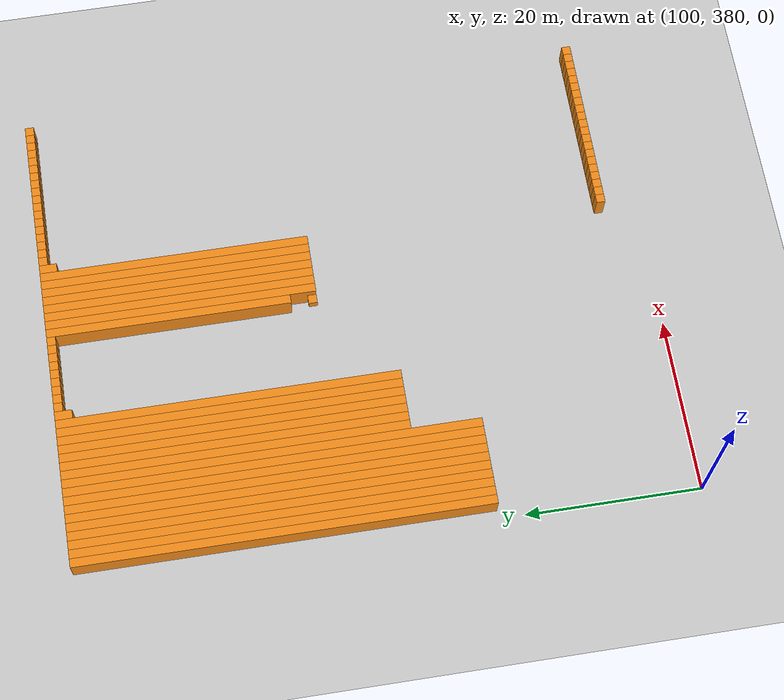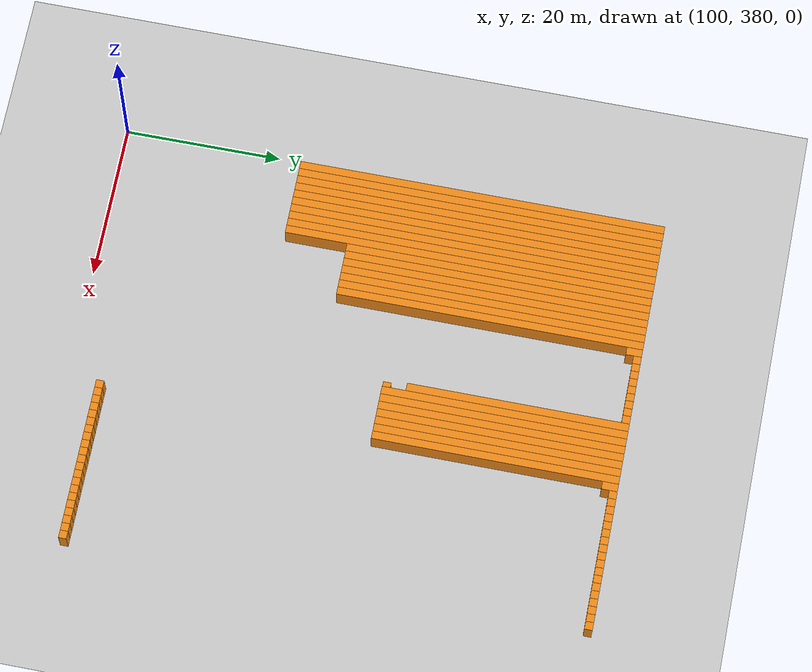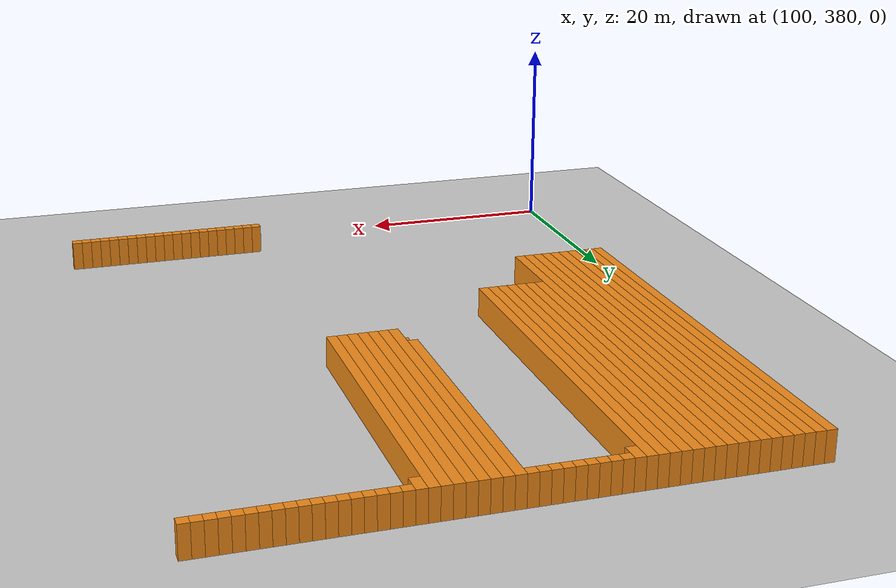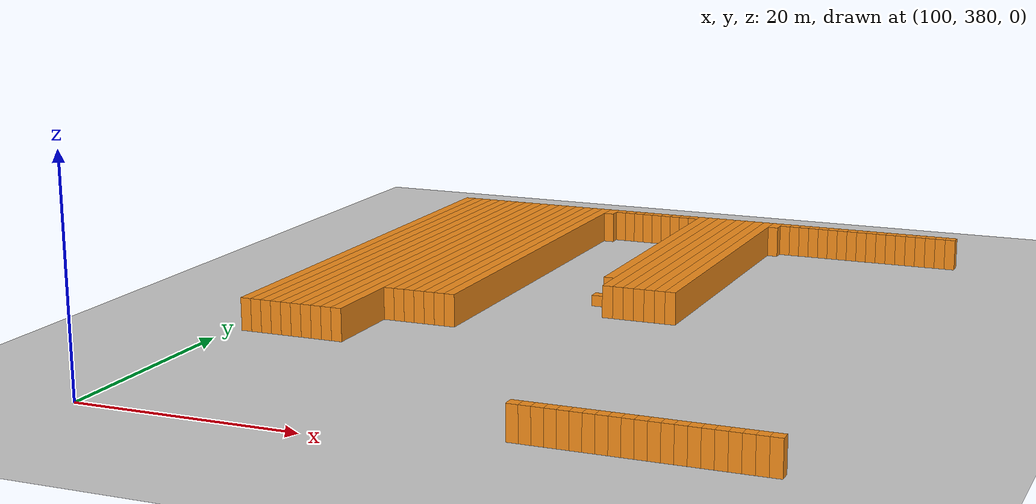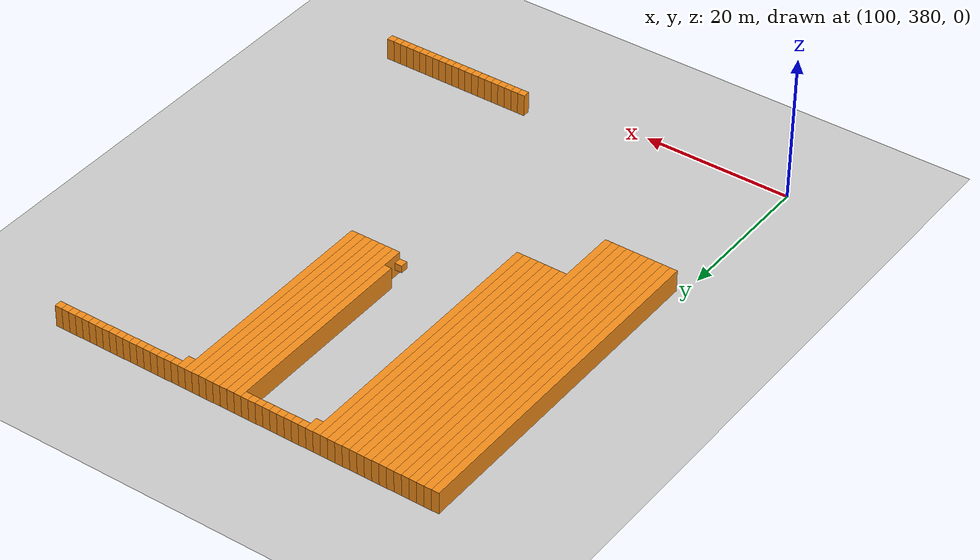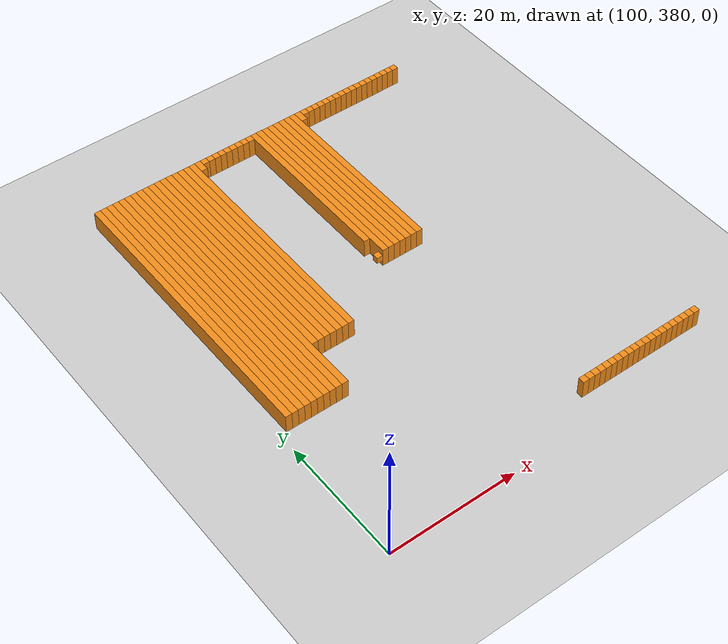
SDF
<sdf version="1.6">
 <world name="default">
  <include><uri>model://ground_plane</uri></include>
  <model name="unit_box_1143">
   <pose>101.50   426.50     1.50 0 0 0</pose>
   <static>1</static>
   <link name="link">
    <inertial>
     <mass>5000</mass>
     <inertia><ixx>200</ixx><ixy>0</ixy><ixz>0</ixz><iyy>200</iyy><iyz>0</iyz><izz>200</izz></inertia>
    </inertial>
    <collision name="collision"><geometry><box><size>1 47 3</size></box></geometry></collision>
    <visual name="visual">
     <geometry><box><size>1 47 3</size></box></geometry>
     <material>
      <script><name>Gazebo/Orange</name><uri>file://media/materials/scripts/gazebo.material</uri></script>
     </material>
    </visual>
   </link>
  </model>
  <model name="unit_box_1153">
   <pose>102.50   426.50     1.50 0 0 0</pose>
   <static>1</static>
   <link name="link">
    <inertial>
     <mass>5000</mass>
     <inertia><ixx>200</ixx><ixy>0</ixy><ixz>0</ixz><iyy>200</iyy><iyz>0</iyz><izz>200</izz></inertia>
    </inertial>
    <collision name="collision"><geometry><box><size>1 47 3</size></box></geometry></collision>
    <visual name="visual">
     <geometry><box><size>1 47 3</size></box></geometry>
     <material>
      <script><name>Gazebo/Orange</name><uri>file://media/materials/scripts/gazebo.material</uri></script>
     </material>
    </visual>
   </link>
  </model>
  <model name="unit_box_1163">
   <pose>103.50   426.50     1.50 0 0 0</pose>
   <static>1</static>
   <link name="link">
    <inertial>
     <mass>5000</mass>
     <inertia><ixx>200</ixx><ixy>0</ixy><ixz>0</ixz><iyy>200</iyy><iyz>0</iyz><izz>200</izz></inertia>
    </inertial>
    <collision name="collision"><geometry><box><size>1 47 3</size></box></geometry></collision>
    <visual name="visual">
     <geometry><box><size>1 47 3</size></box></geometry>
     <material>
      <script><name>Gazebo/Orange</name><uri>file://media/materials/scripts/gazebo.material</uri></script>
     </material>
    </visual>
   </link>
  </model>
  <model name="unit_box_1173">
   <pose>104.50   426.50     1.50 0 0 0</pose>
   <static>1</static>
   <link name="link">
    <inertial>
     <mass>5000</mass>
     <inertia><ixx>200</ixx><ixy>0</ixy><ixz>0</ixz><iyy>200</iyy><iyz>0</iyz><izz>200</izz></inertia>
    </inertial>
    <collision name="collision"><geometry><box><size>1 47 3</size></box></geometry></collision>
    <visual name="visual">
     <geometry><box><size>1 47 3</size></box></geometry>
     <material>
      <script><name>Gazebo/Orange</name><uri>file://media/materials/scripts/gazebo.material</uri></script>
     </material>
    </visual>
   </link>
  </model>
  <model name="unit_box_1183">
   <pose>105.50   426.50     1.50 0 0 0</pose>
   <static>1</static>
   <link name="link">
    <inertial>
     <mass>5000</mass>
     <inertia><ixx>200</ixx><ixy>0</ixy><ixz>0</ixz><iyy>200</iyy><iyz>0</iyz><izz>200</izz></inertia>
    </inertial>
    <collision name="collision"><geometry><box><size>1 47 3</size></box></geometry></collision>
    <visual name="visual">
     <geometry><box><size>1 47 3</size></box></geometry>
     <material>
      <script><name>Gazebo/Orange</name><uri>file://media/materials/scripts/gazebo.material</uri></script>
     </material>
    </visual>
   </link>
  </model>
  <model name="unit_box_1192">
   <pose>106.50   426.50     1.50 0 0 0</pose>
   <static>1</static>
   <link name="link">
    <inertial>
     <mass>5000</mass>
     <inertia><ixx>200</ixx><ixy>0</ixy><ixz>0</ixz><iyy>200</iyy><iyz>0</iyz><izz>200</izz></inertia>
    </inertial>
    <collision name="collision"><geometry><box><size>1 47 3</size></box></geometry></collision>
    <visual name="visual">
     <geometry><box><size>1 47 3</size></box></geometry>
     <material>
      <script><name>Gazebo/Orange</name><uri>file://media/materials/scripts/gazebo.material</uri></script>
     </material>
    </visual>
   </link>
  </model>
  <model name="unit_box_1201">
   <pose>107.50   426.50     1.50 0 0 0</pose>
   <static>1</static>
   <link name="link">
    <inertial>
     <mass>5000</mass>
     <inertia><ixx>200</ixx><ixy>0</ixy><ixz>0</ixz><iyy>200</iyy><iyz>0</iyz><izz>200</izz></inertia>
    </inertial>
    <collision name="collision"><geometry><box><size>1 47 3</size></box></geometry></collision>
    <visual name="visual">
     <geometry><box><size>1 47 3</size></box></geometry>
     <material>
      <script><name>Gazebo/Orange</name><uri>file://media/materials/scripts/gazebo.material</uri></script>
     </material>
    </visual>
   </link>
  </model>
  <model name="unit_box_1210">
   <pose>108.50   426.50     1.50 0 0 0</pose>
   <static>1</static>
   <link name="link">
    <inertial>
     <mass>5000</mass>
     <inertia><ixx>200</ixx><ixy>0</ixy><ixz>0</ixz><iyy>200</iyy><iyz>0</iyz><izz>200</izz></inertia>
    </inertial>
    <collision name="collision"><geometry><box><size>1 47 3</size></box></geometry></collision>
    <visual name="visual">
     <geometry><box><size>1 47 3</size></box></geometry>
     <material>
      <script><name>Gazebo/Orange</name><uri>file://media/materials/scripts/gazebo.material</uri></script>
     </material>
    </visual>
   </link>
  </model>
  <model name="unit_box_1219">
   <pose>109.50   426.50     1.50 0 0 0</pose>
   <static>1</static>
   <link name="link">
    <inertial>
     <mass>5000</mass>
     <inertia><ixx>200</ixx><ixy>0</ixy><ixz>0</ixz><iyy>200</iyy><iyz>0</iyz><izz>200</izz></inertia>
    </inertial>
    <collision name="collision"><geometry><box><size>1 47 3</size></box></geometry></collision>
    <visual name="visual">
     <geometry><box><size>1 47 3</size></box></geometry>
     <material>
      <script><name>Gazebo/Orange</name><uri>file://media/materials/scripts/gazebo.material</uri></script>
     </material>
    </visual>
   </link>
  </model>
  <model name="unit_box_1228">
   <pose>110.50   426.50     1.50 0 0 0</pose>
   <static>1</static>
   <link name="link">
    <inertial>
     <mass>5000</mass>
     <inertia><ixx>200</ixx><ixy>0</ixy><ixz>0</ixz><iyy>200</iyy><iyz>0</iyz><izz>200</izz></inertia>
    </inertial>
    <collision name="collision"><geometry><box><size>1 47 3</size></box></geometry></collision>
    <visual name="visual">
     <geometry><box><size>1 47 3</size></box></geometry>
     <material>
      <script><name>Gazebo/Orange</name><uri>file://media/materials/scripts/gazebo.material</uri></script>
     </material>
    </visual>
   </link>
  </model>
  <model name="unit_box_1238">
   <pose>111.50   430.50     1.50 0 0 0</pose>
   <static>1</static>
   <link name="link">
    <inertial>
     <mass>5000</mass>
     <inertia><ixx>200</ixx><ixy>0</ixy><ixz>0</ixz><iyy>200</iyy><iyz>0</iyz><izz>200</izz></inertia>
    </inertial>
    <collision name="collision"><geometry><box><size>1 39 3</size></box></geometry></collision>
    <visual name="visual">
     <geometry><box><size>1 39 3</size></box></geometry>
     <material>
      <script><name>Gazebo/Orange</name><uri>file://media/materials/scripts/gazebo.material</uri></script>
     </material>
    </visual>
   </link>
  </model>
  <model name="unit_box_1248">
   <pose>112.50   430.50     1.50 0 0 0</pose>
   <static>1</static>
   <link name="link">
    <inertial>
     <mass>5000</mass>
     <inertia><ixx>200</ixx><ixy>0</ixy><ixz>0</ixz><iyy>200</iyy><iyz>0</iyz><izz>200</izz></inertia>
    </inertial>
    <collision name="collision"><geometry><box><size>1 39 3</size></box></geometry></collision>
    <visual name="visual">
     <geometry><box><size>1 39 3</size></box></geometry>
     <material>
      <script><name>Gazebo/Orange</name><uri>file://media/materials/scripts/gazebo.material</uri></script>
     </material>
    </visual>
   </link>
  </model>
  <model name="unit_box_1258">
   <pose>113.50   430.50     1.50 0 0 0</pose>
   <static>1</static>
   <link name="link">
    <inertial>
     <mass>5000</mass>
     <inertia><ixx>200</ixx><ixy>0</ixy><ixz>0</ixz><iyy>200</iyy><iyz>0</iyz><izz>200</izz></inertia>
    </inertial>
    <collision name="collision"><geometry><box><size>1 39 3</size></box></geometry></collision>
    <visual name="visual">
     <geometry><box><size>1 39 3</size></box></geometry>
     <material>
      <script><name>Gazebo/Orange</name><uri>file://media/materials/scripts/gazebo.material</uri></script>
     </material>
    </visual>
   </link>
  </model>
  <model name="unit_box_1268">
   <pose>114.50   430.50     1.50 0 0 0</pose>
   <static>1</static>
   <link name="link">
    <inertial>
     <mass>5000</mass>
     <inertia><ixx>200</ixx><ixy>0</ixy><ixz>0</ixz><iyy>200</iyy><iyz>0</iyz><izz>200</izz></inertia>
    </inertial>
    <collision name="collision"><geometry><box><size>1 39 3</size></box></geometry></collision>
    <visual name="visual">
     <geometry><box><size>1 39 3</size></box></geometry>
     <material>
      <script><name>Gazebo/Orange</name><uri>file://media/materials/scripts/gazebo.material</uri></script>
     </material>
    </visual>
   </link>
  </model>
  <model name="unit_box_1278">
   <pose>115.50   430.50     1.50 0 0 0</pose>
   <static>1</static>
   <link name="link">
    <inertial>
     <mass>5000</mass>
     <inertia><ixx>200</ixx><ixy>0</ixy><ixz>0</ixz><iyy>200</iyy><iyz>0</iyz><izz>200</izz></inertia>
    </inertial>
    <collision name="collision"><geometry><box><size>1 39 3</size></box></geometry></collision>
    <visual name="visual">
     <geometry><box><size>1 39 3</size></box></geometry>
     <material>
      <script><name>Gazebo/Orange</name><uri>file://media/materials/scripts/gazebo.material</uri></script>
     </material>
    </visual>
   </link>
  </model>
  <model name="unit_box_1292">
   <pose>116.50   430.50     1.50 0 0 0</pose>
   <static>1</static>
   <link name="link">
    <inertial>
     <mass>5000</mass>
     <inertia><ixx>200</ixx><ixy>0</ixy><ixz>0</ixz><iyy>200</iyy><iyz>0</iyz><izz>200</izz></inertia>
    </inertial>
    <collision name="collision"><geometry><box><size>1 39 3</size></box></geometry></collision>
    <visual name="visual">
     <geometry><box><size>1 39 3</size></box></geometry>
     <material>
      <script><name>Gazebo/Orange</name><uri>file://media/materials/scripts/gazebo.material</uri></script>
     </material>
    </visual>
   </link>
  </model>
  <model name="unit_box_1304">
   <pose>117.50   430.50     1.50 0 0 0</pose>
   <static>1</static>
   <link name="link">
    <inertial>
     <mass>5000</mass>
     <inertia><ixx>200</ixx><ixy>0</ixy><ixz>0</ixz><iyy>200</iyy><iyz>0</iyz><izz>200</izz></inertia>
    </inertial>
    <collision name="collision"><geometry><box><size>1 39 3</size></box></geometry></collision>
    <visual name="visual">
     <geometry><box><size>1 39 3</size></box></geometry>
     <material>
      <script><name>Gazebo/Orange</name><uri>file://media/materials/scripts/gazebo.material</uri></script>
     </material>
    </visual>
   </link>
  </model>
  <model name="unit_box_1315">
   <pose>118.50   449.00     1.50 0 0 0</pose>
   <static>1</static>
   <link name="link">
    <inertial>
     <mass>5000</mass>
     <inertia><ixx>200</ixx><ixy>0</ixy><ixz>0</ixz><iyy>200</iyy><iyz>0</iyz><izz>200</izz></inertia>
    </inertial>
    <collision name="collision"><geometry><box><size>1 2 3</size></box></geometry></collision>
    <visual name="visual">
     <geometry><box><size>1 2 3</size></box></geometry>
     <material>
      <script><name>Gazebo/Orange</name><uri>file://media/materials/scripts/gazebo.material</uri></script>
     </material>
    </visual>
   </link>
  </model>
  <model name="unit_box_1329">
   <pose>119.50   449.50     1.50 0 0 0</pose>
   <static>1</static>
   <link name="link">
    <inertial>
     <mass>5000</mass>
     <inertia><ixx>200</ixx><ixy>0</ixy><ixz>0</ixz><iyy>200</iyy><iyz>0</iyz><izz>200</izz></inertia>
    </inertial>
    <collision name="collision"><geometry><box><size>1 1 3</size></box></geometry></collision>
    <visual name="visual">
     <geometry><box><size>1 1 3</size></box></geometry>
     <material>
      <script><name>Gazebo/Orange</name><uri>file://media/materials/scripts/gazebo.material</uri></script>
     </material>
    </visual>
   </link>
  </model>
  <model name="unit_box_1341">
   <pose>120.50   449.50     1.50 0 0 0</pose>
   <static>1</static>
   <link name="link">
    <inertial>
     <mass>5000</mass>
     <inertia><ixx>200</ixx><ixy>0</ixy><ixz>0</ixz><iyy>200</iyy><iyz>0</iyz><izz>200</izz></inertia>
    </inertial>
    <collision name="collision"><geometry><box><size>1 1 3</size></box></geometry></collision>
    <visual name="visual">
     <geometry><box><size>1 1 3</size></box></geometry>
     <material>
      <script><name>Gazebo/Orange</name><uri>file://media/materials/scripts/gazebo.material</uri></script>
     </material>
    </visual>
   </link>
  </model>
  <model name="unit_box_1350">
   <pose>121.50   449.50     1.50 0 0 0</pose>
   <static>1</static>
   <link name="link">
    <inertial>
     <mass>5000</mass>
     <inertia><ixx>200</ixx><ixy>0</ixy><ixz>0</ixz><iyy>200</iyy><iyz>0</iyz><izz>200</izz></inertia>
    </inertial>
    <collision name="collision"><geometry><box><size>1 1 3</size></box></geometry></collision>
    <visual name="visual">
     <geometry><box><size>1 1 3</size></box></geometry>
     <material>
      <script><name>Gazebo/Orange</name><uri>file://media/materials/scripts/gazebo.material</uri></script>
     </material>
    </visual>
   </link>
  </model>
  <model name="unit_box_1357">
   <pose>122.50   449.50     1.50 0 0 0</pose>
   <static>1</static>
   <link name="link">
    <inertial>
     <mass>5000</mass>
     <inertia><ixx>200</ixx><ixy>0</ixy><ixz>0</ixz><iyy>200</iyy><iyz>0</iyz><izz>200</izz></inertia>
    </inertial>
    <collision name="collision"><geometry><box><size>1 1 3</size></box></geometry></collision>
    <visual name="visual">
     <geometry><box><size>1 1 3</size></box></geometry>
     <material>
      <script><name>Gazebo/Orange</name><uri>file://media/materials/scripts/gazebo.material</uri></script>
     </material>
    </visual>
   </link>
  </model>
  <model name="unit_box_1365">
   <pose>123.50   449.50     1.50 0 0 0</pose>
   <static>1</static>
   <link name="link">
    <inertial>
     <mass>5000</mass>
     <inertia><ixx>200</ixx><ixy>0</ixy><ixz>0</ixz><iyy>200</iyy><iyz>0</iyz><izz>200</izz></inertia>
    </inertial>
    <collision name="collision"><geometry><box><size>1 1 3</size></box></geometry></collision>
    <visual name="visual">
     <geometry><box><size>1 1 3</size></box></geometry>
     <material>
      <script><name>Gazebo/Orange</name><uri>file://media/materials/scripts/gazebo.material</uri></script>
     </material>
    </visual>
   </link>
  </model>
  <model name="unit_box_1371">
   <pose>124.50   449.50     1.50 0 0 0</pose>
   <static>1</static>
   <link name="link">
    <inertial>
     <mass>5000</mass>
     <inertia><ixx>200</ixx><ixy>0</ixy><ixz>0</ixz><iyy>200</iyy><iyz>0</iyz><izz>200</izz></inertia>
    </inertial>
    <collision name="collision"><geometry><box><size>1 1 3</size></box></geometry></collision>
    <visual name="visual">
     <geometry><box><size>1 1 3</size></box></geometry>
     <material>
      <script><name>Gazebo/Orange</name><uri>file://media/materials/scripts/gazebo.material</uri></script>
     </material>
    </visual>
   </link>
  </model>
  <model name="unit_box_1377">
   <pose>125.50   449.50     1.50 0 0 0</pose>
   <static>1</static>
   <link name="link">
    <inertial>
     <mass>5000</mass>
     <inertia><ixx>200</ixx><ixy>0</ixy><ixz>0</ixz><iyy>200</iyy><iyz>0</iyz><izz>200</izz></inertia>
    </inertial>
    <collision name="collision"><geometry><box><size>1 1 3</size></box></geometry></collision>
    <visual name="visual">
     <geometry><box><size>1 1 3</size></box></geometry>
     <material>
      <script><name>Gazebo/Orange</name><uri>file://media/materials/scripts/gazebo.material</uri></script>
     </material>
    </visual>
   </link>
  </model>
  <model name="unit_box_1383">
   <pose>126.50   449.50     1.50 0 0 0</pose>
   <static>1</static>
   <link name="link">
    <inertial>
     <mass>5000</mass>
     <inertia><ixx>200</ixx><ixy>0</ixy><ixz>0</ixz><iyy>200</iyy><iyz>0</iyz><izz>200</izz></inertia>
    </inertial>
    <collision name="collision"><geometry><box><size>1 1 3</size></box></geometry></collision>
    <visual name="visual">
     <geometry><box><size>1 1 3</size></box></geometry>
     <material>
      <script><name>Gazebo/Orange</name><uri>file://media/materials/scripts/gazebo.material</uri></script>
     </material>
    </visual>
   </link>
  </model>
  <model name="unit_box_1389">
   <pose>127.50   449.50     1.50 0 0 0</pose>
   <static>1</static>
   <link name="link">
    <inertial>
     <mass>5000</mass>
     <inertia><ixx>200</ixx><ixy>0</ixy><ixz>0</ixz><iyy>200</iyy><iyz>0</iyz><izz>200</izz></inertia>
    </inertial>
    <collision name="collision"><geometry><box><size>1 1 3</size></box></geometry></collision>
    <visual name="visual">
     <geometry><box><size>1 1 3</size></box></geometry>
     <material>
      <script><name>Gazebo/Orange</name><uri>file://media/materials/scripts/gazebo.material</uri></script>
     </material>
    </visual>
   </link>
  </model>
  <model name="unit_box_1395">
   <pose>128.50   419.50     1.50 0 0 0</pose>
   <static>1</static>
   <link name="link">
    <inertial>
     <mass>5000</mass>
     <inertia><ixx>200</ixx><ixy>0</ixy><ixz>0</ixz><iyy>200</iyy><iyz>0</iyz><izz>200</izz></inertia>
    </inertial>
    <collision name="collision"><geometry><box><size>1 1 1</size></box></geometry></collision>
    <visual name="visual">
     <geometry><box><size>1 1 1</size></box></geometry>
     <material>
      <script><name>Gazebo/Orange</name><uri>file://media/materials/scripts/gazebo.material</uri></script>
     </material>
    </visual>
   </link>
  </model>
  <model name="unit_box_1396">
   <pose>128.50   436.00     1.50 0 0 0</pose>
   <static>1</static>
   <link name="link">
    <inertial>
     <mass>5000</mass>
     <inertia><ixx>200</ixx><ixy>0</ixy><ixz>0</ixz><iyy>200</iyy><iyz>0</iyz><izz>200</izz></inertia>
    </inertial>
    <collision name="collision"><geometry><box><size>1 28 3</size></box></geometry></collision>
    <visual name="visual">
     <geometry><box><size>1 28 3</size></box></geometry>
     <material>
      <script><name>Gazebo/Orange</name><uri>file://media/materials/scripts/gazebo.material</uri></script>
     </material>
    </visual>
   </link>
  </model>
  <model name="unit_box_1403">
   <pose>129.50   434.50     1.50 0 0 0</pose>
   <static>1</static>
   <link name="link">
    <inertial>
     <mass>5000</mass>
     <inertia><ixx>200</ixx><ixy>0</ixy><ixz>0</ixz><iyy>200</iyy><iyz>0</iyz><izz>200</izz></inertia>
    </inertial>
    <collision name="collision"><geometry><box><size>1 31 3</size></box></geometry></collision>
    <visual name="visual">
     <geometry><box><size>1 31 3</size></box></geometry>
     <material>
      <script><name>Gazebo/Orange</name><uri>file://media/materials/scripts/gazebo.material</uri></script>
     </material>
    </visual>
   </link>
  </model>
  <model name="unit_box_1411">
   <pose>130.50   434.50     1.50 0 0 0</pose>
   <static>1</static>
   <link name="link">
    <inertial>
     <mass>5000</mass>
     <inertia><ixx>200</ixx><ixy>0</ixy><ixz>0</ixz><iyy>200</iyy><iyz>0</iyz><izz>200</izz></inertia>
    </inertial>
    <collision name="collision"><geometry><box><size>1 31 3</size></box></geometry></collision>
    <visual name="visual">
     <geometry><box><size>1 31 3</size></box></geometry>
     <material>
      <script><name>Gazebo/Orange</name><uri>file://media/materials/scripts/gazebo.material</uri></script>
     </material>
    </visual>
   </link>
  </model>
  <model name="unit_box_1418">
   <pose>131.50   434.50     1.50 0 0 0</pose>
   <static>1</static>
   <link name="link">
    <inertial>
     <mass>5000</mass>
     <inertia><ixx>200</ixx><ixy>0</ixy><ixz>0</ixz><iyy>200</iyy><iyz>0</iyz><izz>200</izz></inertia>
    </inertial>
    <collision name="collision"><geometry><box><size>1 31 3</size></box></geometry></collision>
    <visual name="visual">
     <geometry><box><size>1 31 3</size></box></geometry>
     <material>
      <script><name>Gazebo/Orange</name><uri>file://media/materials/scripts/gazebo.material</uri></script>
     </material>
    </visual>
   </link>
  </model>
  <model name="unit_box_1425">
   <pose>132.50   434.50     1.50 0 0 0</pose>
   <static>1</static>
   <link name="link">
    <inertial>
     <mass>5000</mass>
     <inertia><ixx>200</ixx><ixy>0</ixy><ixz>0</ixz><iyy>200</iyy><iyz>0</iyz><izz>200</izz></inertia>
    </inertial>
    <collision name="collision"><geometry><box><size>1 31 3</size></box></geometry></collision>
    <visual name="visual">
     <geometry><box><size>1 31 3</size></box></geometry>
     <material>
      <script><name>Gazebo/Orange</name><uri>file://media/materials/scripts/gazebo.material</uri></script>
     </material>
    </visual>
   </link>
  </model>
  <model name="unit_box_1432">
   <pose>133.50   434.50     1.50 0 0 0</pose>
   <static>1</static>
   <link name="link">
    <inertial>
     <mass>5000</mass>
     <inertia><ixx>200</ixx><ixy>0</ixy><ixz>0</ixz><iyy>200</iyy><iyz>0</iyz><izz>200</izz></inertia>
    </inertial>
    <collision name="collision"><geometry><box><size>1 31 3</size></box></geometry></collision>
    <visual name="visual">
     <geometry><box><size>1 31 3</size></box></geometry>
     <material>
      <script><name>Gazebo/Orange</name><uri>file://media/materials/scripts/gazebo.material</uri></script>
     </material>
    </visual>
   </link>
  </model>
  <model name="unit_box_1439">
   <pose>134.50   434.50     1.50 0 0 0</pose>
   <static>1</static>
   <link name="link">
    <inertial>
     <mass>5000</mass>
     <inertia><ixx>200</ixx><ixy>0</ixy><ixz>0</ixz><iyy>200</iyy><iyz>0</iyz><izz>200</izz></inertia>
    </inertial>
    <collision name="collision"><geometry><box><size>1 31 3</size></box></geometry></collision>
    <visual name="visual">
     <geometry><box><size>1 31 3</size></box></geometry>
     <material>
      <script><name>Gazebo/Orange</name><uri>file://media/materials/scripts/gazebo.material</uri></script>
     </material>
    </visual>
   </link>
  </model>
  <model name="unit_box_1453">
   <pose>135.50   384.50     1.50 0 0 0</pose>
   <static>1</static>
   <link name="link">
    <inertial>
     <mass>5000</mass>
     <inertia><ixx>200</ixx><ixy>0</ixy><ixz>0</ixz><iyy>200</iyy><iyz>0</iyz><izz>200</izz></inertia>
    </inertial>
    <collision name="collision"><geometry><box><size>1 1 3</size></box></geometry></collision>
    <visual name="visual">
     <geometry><box><size>1 1 3</size></box></geometry>
     <material>
      <script><name>Gazebo/Orange</name><uri>file://media/materials/scripts/gazebo.material</uri></script>
     </material>
    </visual>
   </link>
  </model>
  <model name="unit_box_1454">
   <pose>135.50   434.50     1.50 0 0 0</pose>
   <static>1</static>
   <link name="link">
    <inertial>
     <mass>5000</mass>
     <inertia><ixx>200</ixx><ixy>0</ixy><ixz>0</ixz><iyy>200</iyy><iyz>0</iyz><izz>200</izz></inertia>
    </inertial>
    <collision name="collision"><geometry><box><size>1 31 3</size></box></geometry></collision>
    <visual name="visual">
     <geometry><box><size>1 31 3</size></box></geometry>
     <material>
      <script><name>Gazebo/Orange</name><uri>file://media/materials/scripts/gazebo.material</uri></script>
     </material>
    </visual>
   </link>
  </model>
  <model name="unit_box_1466">
   <pose>136.50   384.50     1.50 0 0 0</pose>
   <static>1</static>
   <link name="link">
    <inertial>
     <mass>5000</mass>
     <inertia><ixx>200</ixx><ixy>0</ixy><ixz>0</ixz><iyy>200</iyy><iyz>0</iyz><izz>200</izz></inertia>
    </inertial>
    <collision name="collision"><geometry><box><size>1 1 3</size></box></geometry></collision>
    <visual name="visual">
     <geometry><box><size>1 1 3</size></box></geometry>
     <material>
      <script><name>Gazebo/Orange</name><uri>file://media/materials/scripts/gazebo.material</uri></script>
     </material>
    </visual>
   </link>
  </model>
  <model name="unit_box_1467">
   <pose>136.50   449.00     1.50 0 0 0</pose>
   <static>1</static>
   <link name="link">
    <inertial>
     <mass>5000</mass>
     <inertia><ixx>200</ixx><ixy>0</ixy><ixz>0</ixz><iyy>200</iyy><iyz>0</iyz><izz>200</izz></inertia>
    </inertial>
    <collision name="collision"><geometry><box><size>1 2 3</size></box></geometry></collision>
    <visual name="visual">
     <geometry><box><size>1 2 3</size></box></geometry>
     <material>
      <script><name>Gazebo/Orange</name><uri>file://media/materials/scripts/gazebo.material</uri></script>
     </material>
    </visual>
   </link>
  </model>
  <model name="unit_box_1480">
   <pose>137.50   384.50     1.50 0 0 0</pose>
   <static>1</static>
   <link name="link">
    <inertial>
     <mass>5000</mass>
     <inertia><ixx>200</ixx><ixy>0</ixy><ixz>0</ixz><iyy>200</iyy><iyz>0</iyz><izz>200</izz></inertia>
    </inertial>
    <collision name="collision"><geometry><box><size>1 1 3</size></box></geometry></collision>
    <visual name="visual">
     <geometry><box><size>1 1 3</size></box></geometry>
     <material>
      <script><name>Gazebo/Orange</name><uri>file://media/materials/scripts/gazebo.material</uri></script>
     </material>
    </visual>
   </link>
  </model>
  <model name="unit_box_1481">
   <pose>137.50   449.50     1.50 0 0 0</pose>
   <static>1</static>
   <link name="link">
    <inertial>
     <mass>5000</mass>
     <inertia><ixx>200</ixx><ixy>0</ixy><ixz>0</ixz><iyy>200</iyy><iyz>0</iyz><izz>200</izz></inertia>
    </inertial>
    <collision name="collision"><geometry><box><size>1 1 3</size></box></geometry></collision>
    <visual name="visual">
     <geometry><box><size>1 1 3</size></box></geometry>
     <material>
      <script><name>Gazebo/Orange</name><uri>file://media/materials/scripts/gazebo.material</uri></script>
     </material>
    </visual>
   </link>
  </model>
  <model name="unit_box_1493">
   <pose>138.50   384.50     1.50 0 0 0</pose>
   <static>1</static>
   <link name="link">
    <inertial>
     <mass>5000</mass>
     <inertia><ixx>200</ixx><ixy>0</ixy><ixz>0</ixz><iyy>200</iyy><iyz>0</iyz><izz>200</izz></inertia>
    </inertial>
    <collision name="collision"><geometry><box><size>1 1 3</size></box></geometry></collision>
    <visual name="visual">
     <geometry><box><size>1 1 3</size></box></geometry>
     <material>
      <script><name>Gazebo/Orange</name><uri>file://media/materials/scripts/gazebo.material</uri></script>
     </material>
    </visual>
   </link>
  </model>
  <model name="unit_box_1494">
   <pose>138.50   449.50     1.50 0 0 0</pose>
   <static>1</static>
   <link name="link">
    <inertial>
     <mass>5000</mass>
     <inertia><ixx>200</ixx><ixy>0</ixy><ixz>0</ixz><iyy>200</iyy><iyz>0</iyz><izz>200</izz></inertia>
    </inertial>
    <collision name="collision"><geometry><box><size>1 1 3</size></box></geometry></collision>
    <visual name="visual">
     <geometry><box><size>1 1 3</size></box></geometry>
     <material>
      <script><name>Gazebo/Orange</name><uri>file://media/materials/scripts/gazebo.material</uri></script>
     </material>
    </visual>
   </link>
  </model>
  <model name="unit_box_1506">
   <pose>139.50   384.50     1.50 0 0 0</pose>
   <static>1</static>
   <link name="link">
    <inertial>
     <mass>5000</mass>
     <inertia><ixx>200</ixx><ixy>0</ixy><ixz>0</ixz><iyy>200</iyy><iyz>0</iyz><izz>200</izz></inertia>
    </inertial>
    <collision name="collision"><geometry><box><size>1 1 3</size></box></geometry></collision>
    <visual name="visual">
     <geometry><box><size>1 1 3</size></box></geometry>
     <material>
      <script><name>Gazebo/Orange</name><uri>file://media/materials/scripts/gazebo.material</uri></script>
     </material>
    </visual>
   </link>
  </model>
  <model name="unit_box_1507">
   <pose>139.50   449.50     1.50 0 0 0</pose>
   <static>1</static>
   <link name="link">
    <inertial>
     <mass>5000</mass>
     <inertia><ixx>200</ixx><ixy>0</ixy><ixz>0</ixz><iyy>200</iyy><iyz>0</iyz><izz>200</izz></inertia>
    </inertial>
    <collision name="collision"><geometry><box><size>1 1 3</size></box></geometry></collision>
    <visual name="visual">
     <geometry><box><size>1 1 3</size></box></geometry>
     <material>
      <script><name>Gazebo/Orange</name><uri>file://media/materials/scripts/gazebo.material</uri></script>
     </material>
    </visual>
   </link>
  </model>
  <model name="unit_box_1518">
   <pose>140.50   384.50     1.50 0 0 0</pose>
   <static>1</static>
   <link name="link">
    <inertial>
     <mass>5000</mass>
     <inertia><ixx>200</ixx><ixy>0</ixy><ixz>0</ixz><iyy>200</iyy><iyz>0</iyz><izz>200</izz></inertia>
    </inertial>
    <collision name="collision"><geometry><box><size>1 1 3</size></box></geometry></collision>
    <visual name="visual">
     <geometry><box><size>1 1 3</size></box></geometry>
     <material>
      <script><name>Gazebo/Orange</name><uri>file://media/materials/scripts/gazebo.material</uri></script>
     </material>
    </visual>
   </link>
  </model>
  <model name="unit_box_1519">
   <pose>140.50   449.50     1.50 0 0 0</pose>
   <static>1</static>
   <link name="link">
    <inertial>
     <mass>5000</mass>
     <inertia><ixx>200</ixx><ixy>0</ixy><ixz>0</ixz><iyy>200</iyy><iyz>0</iyz><izz>200</izz></inertia>
    </inertial>
    <collision name="collision"><geometry><box><size>1 1 3</size></box></geometry></collision>
    <visual name="visual">
     <geometry><box><size>1 1 3</size></box></geometry>
     <material>
      <script><name>Gazebo/Orange</name><uri>file://media/materials/scripts/gazebo.material</uri></script>
     </material>
    </visual>
   </link>
  </model>
  <model name="unit_box_1530">
   <pose>141.50   384.50     1.50 0 0 0</pose>
   <static>1</static>
   <link name="link">
    <inertial>
     <mass>5000</mass>
     <inertia><ixx>200</ixx><ixy>0</ixy><ixz>0</ixz><iyy>200</iyy><iyz>0</iyz><izz>200</izz></inertia>
    </inertial>
    <collision name="collision"><geometry><box><size>1 1 3</size></box></geometry></collision>
    <visual name="visual">
     <geometry><box><size>1 1 3</size></box></geometry>
     <material>
      <script><name>Gazebo/Orange</name><uri>file://media/materials/scripts/gazebo.material</uri></script>
     </material>
    </visual>
   </link>
  </model>
  <model name="unit_box_1531">
   <pose>141.50   449.50     1.50 0 0 0</pose>
   <static>1</static>
   <link name="link">
    <inertial>
     <mass>5000</mass>
     <inertia><ixx>200</ixx><ixy>0</ixy><ixz>0</ixz><iyy>200</iyy><iyz>0</iyz><izz>200</izz></inertia>
    </inertial>
    <collision name="collision"><geometry><box><size>1 1 3</size></box></geometry></collision>
    <visual name="visual">
     <geometry><box><size>1 1 3</size></box></geometry>
     <material>
      <script><name>Gazebo/Orange</name><uri>file://media/materials/scripts/gazebo.material</uri></script>
     </material>
    </visual>
   </link>
  </model>
  <model name="unit_box_1537">
   <pose>142.50   384.50     1.50 0 0 0</pose>
   <static>1</static>
   <link name="link">
    <inertial>
     <mass>5000</mass>
     <inertia><ixx>200</ixx><ixy>0</ixy><ixz>0</ixz><iyy>200</iyy><iyz>0</iyz><izz>200</izz></inertia>
    </inertial>
    <collision name="collision"><geometry><box><size>1 1 3</size></box></geometry></collision>
    <visual name="visual">
     <geometry><box><size>1 1 3</size></box></geometry>
     <material>
      <script><name>Gazebo/Orange</name><uri>file://media/materials/scripts/gazebo.material</uri></script>
     </material>
    </visual>
   </link>
  </model>
  <model name="unit_box_1538">
   <pose>142.50   449.50     1.50 0 0 0</pose>
   <static>1</static>
   <link name="link">
    <inertial>
     <mass>5000</mass>
     <inertia><ixx>200</ixx><ixy>0</ixy><ixz>0</ixz><iyy>200</iyy><iyz>0</iyz><izz>200</izz></inertia>
    </inertial>
    <collision name="collision"><geometry><box><size>1 1 3</size></box></geometry></collision>
    <visual name="visual">
     <geometry><box><size>1 1 3</size></box></geometry>
     <material>
      <script><name>Gazebo/Orange</name><uri>file://media/materials/scripts/gazebo.material</uri></script>
     </material>
    </visual>
   </link>
  </model>
  <model name="unit_box_1544">
   <pose>143.50   384.50     1.50 0 0 0</pose>
   <static>1</static>
   <link name="link">
    <inertial>
     <mass>5000</mass>
     <inertia><ixx>200</ixx><ixy>0</ixy><ixz>0</ixz><iyy>200</iyy><iyz>0</iyz><izz>200</izz></inertia>
    </inertial>
    <collision name="collision"><geometry><box><size>1 1 3</size></box></geometry></collision>
    <visual name="visual">
     <geometry><box><size>1 1 3</size></box></geometry>
     <material>
      <script><name>Gazebo/Orange</name><uri>file://media/materials/scripts/gazebo.material</uri></script>
     </material>
    </visual>
   </link>
  </model>
  <model name="unit_box_1545">
   <pose>143.50   449.50     1.50 0 0 0</pose>
   <static>1</static>
   <link name="link">
    <inertial>
     <mass>5000</mass>
     <inertia><ixx>200</ixx><ixy>0</ixy><ixz>0</ixz><iyy>200</iyy><iyz>0</iyz><izz>200</izz></inertia>
    </inertial>
    <collision name="collision"><geometry><box><size>1 1 3</size></box></geometry></collision>
    <visual name="visual">
     <geometry><box><size>1 1 3</size></box></geometry>
     <material>
      <script><name>Gazebo/Orange</name><uri>file://media/materials/scripts/gazebo.material</uri></script>
     </material>
    </visual>
   </link>
  </model>
  <model name="unit_box_1551">
   <pose>144.50   384.50     1.50 0 0 0</pose>
   <static>1</static>
   <link name="link">
    <inertial>
     <mass>5000</mass>
     <inertia><ixx>200</ixx><ixy>0</ixy><ixz>0</ixz><iyy>200</iyy><iyz>0</iyz><izz>200</izz></inertia>
    </inertial>
    <collision name="collision"><geometry><box><size>1 1 3</size></box></geometry></collision>
    <visual name="visual">
     <geometry><box><size>1 1 3</size></box></geometry>
     <material>
      <script><name>Gazebo/Orange</name><uri>file://media/materials/scripts/gazebo.material</uri></script>
     </material>
    </visual>
   </link>
  </model>
  <model name="unit_box_1552">
   <pose>144.50   449.50     1.50 0 0 0</pose>
   <static>1</static>
   <link name="link">
    <inertial>
     <mass>5000</mass>
     <inertia><ixx>200</ixx><ixy>0</ixy><ixz>0</ixz><iyy>200</iyy><iyz>0</iyz><izz>200</izz></inertia>
    </inertial>
    <collision name="collision"><geometry><box><size>1 1 3</size></box></geometry></collision>
    <visual name="visual">
     <geometry><box><size>1 1 3</size></box></geometry>
     <material>
      <script><name>Gazebo/Orange</name><uri>file://media/materials/scripts/gazebo.material</uri></script>
     </material>
    </visual>
   </link>
  </model>
  <model name="unit_box_1558">
   <pose>145.50   384.50     1.50 0 0 0</pose>
   <static>1</static>
   <link name="link">
    <inertial>
     <mass>5000</mass>
     <inertia><ixx>200</ixx><ixy>0</ixy><ixz>0</ixz><iyy>200</iyy><iyz>0</iyz><izz>200</izz></inertia>
    </inertial>
    <collision name="collision"><geometry><box><size>1 1 3</size></box></geometry></collision>
    <visual name="visual">
     <geometry><box><size>1 1 3</size></box></geometry>
     <material>
      <script><name>Gazebo/Orange</name><uri>file://media/materials/scripts/gazebo.material</uri></script>
     </material>
    </visual>
   </link>
  </model>
  <model name="unit_box_1559">
   <pose>145.50   449.50     1.50 0 0 0</pose>
   <static>1</static>
   <link name="link">
    <inertial>
     <mass>5000</mass>
     <inertia><ixx>200</ixx><ixy>0</ixy><ixz>0</ixz><iyy>200</iyy><iyz>0</iyz><izz>200</izz></inertia>
    </inertial>
    <collision name="collision"><geometry><box><size>1 1 3</size></box></geometry></collision>
    <visual name="visual">
     <geometry><box><size>1 1 3</size></box></geometry>
     <material>
      <script><name>Gazebo/Orange</name><uri>file://media/materials/scripts/gazebo.material</uri></script>
     </material>
    </visual>
   </link>
  </model>
  <model name="unit_box_1565">
   <pose>146.50   384.50     1.50 0 0 0</pose>
   <static>1</static>
   <link name="link">
    <inertial>
     <mass>5000</mass>
     <inertia><ixx>200</ixx><ixy>0</ixy><ixz>0</ixz><iyy>200</iyy><iyz>0</iyz><izz>200</izz></inertia>
    </inertial>
    <collision name="collision"><geometry><box><size>1 1 3</size></box></geometry></collision>
    <visual name="visual">
     <geometry><box><size>1 1 3</size></box></geometry>
     <material>
      <script><name>Gazebo/Orange</name><uri>file://media/materials/scripts/gazebo.material</uri></script>
     </material>
    </visual>
   </link>
  </model>
  <model name="unit_box_1566">
   <pose>146.50   449.50     1.50 0 0 0</pose>
   <static>1</static>
   <link name="link">
    <inertial>
     <mass>5000</mass>
     <inertia><ixx>200</ixx><ixy>0</ixy><ixz>0</ixz><iyy>200</iyy><iyz>0</iyz><izz>200</izz></inertia>
    </inertial>
    <collision name="collision"><geometry><box><size>1 1 3</size></box></geometry></collision>
    <visual name="visual">
     <geometry><box><size>1 1 3</size></box></geometry>
     <material>
      <script><name>Gazebo/Orange</name><uri>file://media/materials/scripts/gazebo.material</uri></script>
     </material>
    </visual>
   </link>
  </model>
  <model name="unit_box_1572">
   <pose>147.50   384.50     1.50 0 0 0</pose>
   <static>1</static>
   <link name="link">
    <inertial>
     <mass>5000</mass>
     <inertia><ixx>200</ixx><ixy>0</ixy><ixz>0</ixz><iyy>200</iyy><iyz>0</iyz><izz>200</izz></inertia>
    </inertial>
    <collision name="collision"><geometry><box><size>1 1 3</size></box></geometry></collision>
    <visual name="visual">
     <geometry><box><size>1 1 3</size></box></geometry>
     <material>
      <script><name>Gazebo/Orange</name><uri>file://media/materials/scripts/gazebo.material</uri></script>
     </material>
    </visual>
   </link>
  </model>
  <model name="unit_box_1573">
   <pose>147.50   449.50     1.50 0 0 0</pose>
   <static>1</static>
   <link name="link">
    <inertial>
     <mass>5000</mass>
     <inertia><ixx>200</ixx><ixy>0</ixy><ixz>0</ixz><iyy>200</iyy><iyz>0</iyz><izz>200</izz></inertia>
    </inertial>
    <collision name="collision"><geometry><box><size>1 1 3</size></box></geometry></collision>
    <visual name="visual">
     <geometry><box><size>1 1 3</size></box></geometry>
     <material>
      <script><name>Gazebo/Orange</name><uri>file://media/materials/scripts/gazebo.material</uri></script>
     </material>
    </visual>
   </link>
  </model>
  <model name="unit_box_1580">
   <pose>148.50   384.50     1.50 0 0 0</pose>
   <static>1</static>
   <link name="link">
    <inertial>
     <mass>5000</mass>
     <inertia><ixx>200</ixx><ixy>0</ixy><ixz>0</ixz><iyy>200</iyy><iyz>0</iyz><izz>200</izz></inertia>
    </inertial>
    <collision name="collision"><geometry><box><size>1 1 3</size></box></geometry></collision>
    <visual name="visual">
     <geometry><box><size>1 1 3</size></box></geometry>
     <material>
      <script><name>Gazebo/Orange</name><uri>file://media/materials/scripts/gazebo.material</uri></script>
     </material>
    </visual>
   </link>
  </model>
  <model name="unit_box_1581">
   <pose>148.50   449.50     1.50 0 0 0</pose>
   <static>1</static>
   <link name="link">
    <inertial>
     <mass>5000</mass>
     <inertia><ixx>200</ixx><ixy>0</ixy><ixz>0</ixz><iyy>200</iyy><iyz>0</iyz><izz>200</izz></inertia>
    </inertial>
    <collision name="collision"><geometry><box><size>1 1 3</size></box></geometry></collision>
    <visual name="visual">
     <geometry><box><size>1 1 3</size></box></geometry>
     <material>
      <script><name>Gazebo/Orange</name><uri>file://media/materials/scripts/gazebo.material</uri></script>
     </material>
    </visual>
   </link>
  </model>
  <model name="unit_box_1589">
   <pose>149.50   384.50     1.50 0 0 0</pose>
   <static>1</static>
   <link name="link">
    <inertial>
     <mass>5000</mass>
     <inertia><ixx>200</ixx><ixy>0</ixy><ixz>0</ixz><iyy>200</iyy><iyz>0</iyz><izz>200</izz></inertia>
    </inertial>
    <collision name="collision"><geometry><box><size>1 1 3</size></box></geometry></collision>
    <visual name="visual">
     <geometry><box><size>1 1 3</size></box></geometry>
     <material>
      <script><name>Gazebo/Orange</name><uri>file://media/materials/scripts/gazebo.material</uri></script>
     </material>
    </visual>
   </link>
  </model>
  <model name="unit_box_1590">
   <pose>149.50   449.50     1.50 0 0 0</pose>
   <static>1</static>
   <link name="link">
    <inertial>
     <mass>5000</mass>
     <inertia><ixx>200</ixx><ixy>0</ixy><ixz>0</ixz><iyy>200</iyy><iyz>0</iyz><izz>200</izz></inertia>
    </inertial>
    <collision name="collision"><geometry><box><size>1 1 3</size></box></geometry></collision>
    <visual name="visual">
     <geometry><box><size>1 1 3</size></box></geometry>
     <material>
      <script><name>Gazebo/Orange</name><uri>file://media/materials/scripts/gazebo.material</uri></script>
     </material>
    </visual>
   </link>
  </model>
  <model name="unit_box_1597">
   <pose>150.50   384.50     1.50 0 0 0</pose>
   <static>1</static>
   <link name="link">
    <inertial>
     <mass>5000</mass>
     <inertia><ixx>200</ixx><ixy>0</ixy><ixz>0</ixz><iyy>200</iyy><iyz>0</iyz><izz>200</izz></inertia>
    </inertial>
    <collision name="collision"><geometry><box><size>1 1 3</size></box></geometry></collision>
    <visual name="visual">
     <geometry><box><size>1 1 3</size></box></geometry>
     <material>
      <script><name>Gazebo/Orange</name><uri>file://media/materials/scripts/gazebo.material</uri></script>
     </material>
    </visual>
   </link>
  </model>
  <model name="unit_box_1598">
   <pose>150.50   449.50     1.50 0 0 0</pose>
   <static>1</static>
   <link name="link">
    <inertial>
     <mass>5000</mass>
     <inertia><ixx>200</ixx><ixy>0</ixy><ixz>0</ixz><iyy>200</iyy><iyz>0</iyz><izz>200</izz></inertia>
    </inertial>
    <collision name="collision"><geometry><box><size>1 1 3</size></box></geometry></collision>
    <visual name="visual">
     <geometry><box><size>1 1 3</size></box></geometry>
     <material>
      <script><name>Gazebo/Orange</name><uri>file://media/materials/scripts/gazebo.material</uri></script>
     </material>
    </visual>
   </link>
  </model>
  <model name="unit_box_1606">
   <pose>151.50   384.50     1.50 0 0 0</pose>
   <static>1</static>
   <link name="link">
    <inertial>
     <mass>5000</mass>
     <inertia><ixx>200</ixx><ixy>0</ixy><ixz>0</ixz><iyy>200</iyy><iyz>0</iyz><izz>200</izz></inertia>
    </inertial>
    <collision name="collision"><geometry><box><size>1 1 3</size></box></geometry></collision>
    <visual name="visual">
     <geometry><box><size>1 1 3</size></box></geometry>
     <material>
      <script><name>Gazebo/Orange</name><uri>file://media/materials/scripts/gazebo.material</uri></script>
     </material>
    </visual>
   </link>
  </model>
  <model name="unit_box_1607">
   <pose>151.50   449.50     1.50 0 0 0</pose>
   <static>1</static>
   <link name="link">
    <inertial>
     <mass>5000</mass>
     <inertia><ixx>200</ixx><ixy>0</ixy><ixz>0</ixz><iyy>200</iyy><iyz>0</iyz><izz>200</izz></inertia>
    </inertial>
    <collision name="collision"><geometry><box><size>1 1 3</size></box></geometry></collision>
    <visual name="visual">
     <geometry><box><size>1 1 3</size></box></geometry>
     <material>
      <script><name>Gazebo/Orange</name><uri>file://media/materials/scripts/gazebo.material</uri></script>
     </material>
    </visual>
   </link>
  </model>
  <model name="unit_box_1615">
   <pose>152.50   384.50     1.50 0 0 0</pose>
   <static>1</static>
   <link name="link">
    <inertial>
     <mass>5000</mass>
     <inertia><ixx>200</ixx><ixy>0</ixy><ixz>0</ixz><iyy>200</iyy><iyz>0</iyz><izz>200</izz></inertia>
    </inertial>
    <collision name="collision"><geometry><box><size>1 1 3</size></box></geometry></collision>
    <visual name="visual">
     <geometry><box><size>1 1 3</size></box></geometry>
     <material>
      <script><name>Gazebo/Orange</name><uri>file://media/materials/scripts/gazebo.material</uri></script>
     </material>
    </visual>
   </link>
  </model>
  <model name="unit_box_1616">
   <pose>152.50   449.50     1.50 0 0 0</pose>
   <static>1</static>
   <link name="link">
    <inertial>
     <mass>5000</mass>
     <inertia><ixx>200</ixx><ixy>0</ixy><ixz>0</ixz><iyy>200</iyy><iyz>0</iyz><izz>200</izz></inertia>
    </inertial>
    <collision name="collision"><geometry><box><size>1 1 3</size></box></geometry></collision>
    <visual name="visual">
     <geometry><box><size>1 1 3</size></box></geometry>
     <material>
      <script><name>Gazebo/Orange</name><uri>file://media/materials/scripts/gazebo.material</uri></script>
     </material>
    </visual>
   </link>
  </model>
  <model name="unit_box_1623">
   <pose>153.50   384.50     1.50 0 0 0</pose>
   <static>1</static>
   <link name="link">
    <inertial>
     <mass>5000</mass>
     <inertia><ixx>200</ixx><ixy>0</ixy><ixz>0</ixz><iyy>200</iyy><iyz>0</iyz><izz>200</izz></inertia>
    </inertial>
    <collision name="collision"><geometry><box><size>1 1 3</size></box></geometry></collision>
    <visual name="visual">
     <geometry><box><size>1 1 3</size></box></geometry>
     <material>
      <script><name>Gazebo/Orange</name><uri>file://media/materials/scripts/gazebo.material</uri></script>
     </material>
    </visual>
   </link>
  </model>
  <model name="unit_box_1624">
   <pose>153.50   449.50     1.50 0 0 0</pose>
   <static>1</static>
   <link name="link">
    <inertial>
     <mass>5000</mass>
     <inertia><ixx>200</ixx><ixy>0</ixy><ixz>0</ixz><iyy>200</iyy><iyz>0</iyz><izz>200</izz></inertia>
    </inertial>
    <collision name="collision"><geometry><box><size>1 1 3</size></box></geometry></collision>
    <visual name="visual">
     <geometry><box><size>1 1 3</size></box></geometry>
     <material>
      <script><name>Gazebo/Orange</name><uri>file://media/materials/scripts/gazebo.material</uri></script>
     </material>
    </visual>
   </link>
  </model>
  <model name="unit_box_1633">
   <pose>154.50   384.50     1.50 0 0 0</pose>
   <static>1</static>
   <link name="link">
    <inertial>
     <mass>5000</mass>
     <inertia><ixx>200</ixx><ixy>0</ixy><ixz>0</ixz><iyy>200</iyy><iyz>0</iyz><izz>200</izz></inertia>
    </inertial>
    <collision name="collision"><geometry><box><size>1 1 3</size></box></geometry></collision>
    <visual name="visual">
     <geometry><box><size>1 1 3</size></box></geometry>
     <material>
      <script><name>Gazebo/Orange</name><uri>file://media/materials/scripts/gazebo.material</uri></script>
     </material>
    </visual>
   </link>
  </model>
  <model name="unit_box_1634">
   <pose>154.50   449.50     1.50 0 0 0</pose>
   <static>1</static>
   <link name="link">
    <inertial>
     <mass>5000</mass>
     <inertia><ixx>200</ixx><ixy>0</ixy><ixz>0</ixz><iyy>200</iyy><iyz>0</iyz><izz>200</izz></inertia>
    </inertial>
    <collision name="collision"><geometry><box><size>1 1 3</size></box></geometry></collision>
    <visual name="visual">
     <geometry><box><size>1 1 3</size></box></geometry>
     <material>
      <script><name>Gazebo/Orange</name><uri>file://media/materials/scripts/gazebo.material</uri></script>
     </material>
    </visual>
   </link>
  </model>
  <model name="unit_box_1641">
   <pose>155.50   384.50     1.50 0 0 0</pose>
   <static>1</static>
   <link name="link">
    <inertial>
     <mass>5000</mass>
     <inertia><ixx>200</ixx><ixy>0</ixy><ixz>0</ixz><iyy>200</iyy><iyz>0</iyz><izz>200</izz></inertia>
    </inertial>
    <collision name="collision"><geometry><box><size>1 1 3</size></box></geometry></collision>
    <visual name="visual">
     <geometry><box><size>1 1 3</size></box></geometry>
     <material>
      <script><name>Gazebo/Orange</name><uri>file://media/materials/scripts/gazebo.material</uri></script>
     </material>
    </visual>
   </link>
  </model>
 </world>
</sdf>
